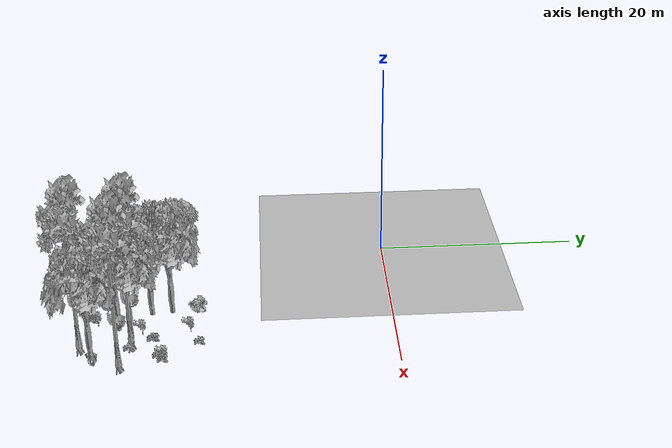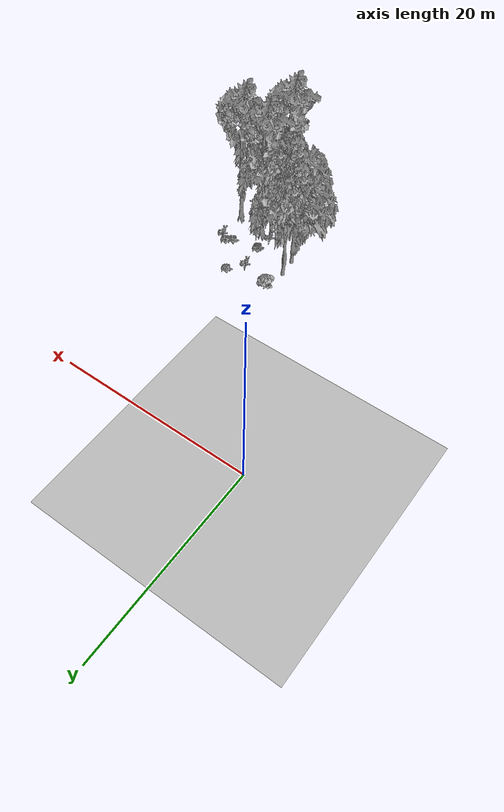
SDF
<sdf version="1.7">
 <world name="default">
  <model name="ground_plane">
   <static>1</static>
   <link name="link">
    <collision name="collision">
     <pose>-50 0 0 0 -0 0</pose>
     <geometry><plane><normal>0 0 1</normal><size>80 80</size></plane></geometry>
     <surface><contact><ode><min_depth>0.01</min_depth><max_vel>0</max_vel></ode></contact></surface>
    </collision>
    <visual name="grass">
     <cast_shadows>0</cast_shadows>
     <geometry>
      <mesh>
       <scale>0.46714285714285714 0.46714285714285714 0.1</scale>
       <uri>file://grass_plane/meshes/grass_plane.dae</uri>
      </mesh>
     </geometry>
    </visual>
   </link>
  </model>
  <model name="Tree 85">
   <static>1</static>
   <pose>14.500510352362717 -24.679226710467805 0 1.57079 -0 0</pose>
   <link name="link">
    <collision name="collision">
     <geometry><mesh><scale>3.5 5 3.5</scale><uri>model://tree_2/meshes/tree_2.obj</uri></mesh></geometry>
    </collision>
    <visual name="visual">
     <geometry><mesh><scale>3.5 5 3.5</scale><uri>model://tree_2/meshes/tree_2.obj</uri></mesh></geometry>
    </visual>
   </link>
  </model>
  <model name="Tree 201">
   <static>1</static>
   <pose>15.6485068210511 -24.58018564617256 0 1.57079 -0 0</pose>
   <link name="link">
    <collision name="collision">
     <geometry><mesh><scale>3.5 5 3.5</scale><uri>model://tree_9/meshes/tree_9.obj</uri></mesh></geometry>
    </collision>
    <visual name="visual">
     <geometry><mesh><scale>3.5 5 3.5</scale><uri>model://tree_9/meshes/tree_9.obj</uri></mesh></geometry>
    </visual>
   </link>
  </model>
  <model name="Tree 353">
   <static>1</static>
   <pose>17.406036648293146 -28.088140136848754 0 1.57079 -0 0</pose>
   <link name="link">
    <collision name="collision">
     <geometry><mesh><scale>3.5 5 3.5</scale><uri>model://tree_2/meshes/tree_2.obj</uri></mesh></geometry>
    </collision>
    <visual name="visual">
     <geometry><mesh><scale>3.5 5 3.5</scale><uri>model://tree_2/meshes/tree_2.obj</uri></mesh></geometry>
    </visual>
   </link>
  </model>
  <model name="Tree 354">
   <static>1</static>
   <pose>10.471961368132376 -21.089634048627843 0 1.57079 -0 0</pose>
   <link name="link">
    <collision name="collision">
     <geometry><mesh><scale>3.5 5 3.5</scale><uri>model://tree_2/meshes/tree_2.obj</uri></mesh></geometry>
    </collision>
    <visual name="visual">
     <geometry><mesh><scale>3.5 5 3.5</scale><uri>model://tree_2/meshes/tree_2.obj</uri></mesh></geometry>
    </visual>
   </link>
  </model>
  <model name="Tree 393">
   <static>1</static>
   <pose>13.143917719322623 -25.939606236745423 0 1.57079 -0 0</pose>
   <link name="link">
    <collision name="collision">
     <geometry><mesh><scale>3.5 5 3.5</scale><uri>model://tree_2/meshes/tree_2.obj</uri></mesh></geometry>
    </collision>
    <visual name="visual">
     <geometry><mesh><scale>3.5 5 3.5</scale><uri>model://tree_2/meshes/tree_2.obj</uri></mesh></geometry>
    </visual>
   </link>
  </model>
  <model name="Tree 433">
   <static>1</static>
   <pose>15.844850873928287 -29.30698377522848 0 1.57079 -0 0</pose>
   <link name="link">
    <collision name="collision">
     <geometry><mesh><scale>3.5 5 3.5</scale><uri>model://tree_9/meshes/tree_9.obj</uri></mesh></geometry>
    </collision>
    <visual name="visual">
     <geometry><mesh><scale>3.5 5 3.5</scale><uri>model://tree_9/meshes/tree_9.obj</uri></mesh></geometry>
    </visual>
   </link>
  </model>
  <model name="Tree 434">
   <static>1</static>
   <pose>10.701705384701484 -23.004031213164406 0 1.57079 -0 0</pose>
   <link name="link">
    <collision name="collision">
     <geometry><mesh><scale>3.5 5 3.5</scale><uri>model://tree_2/meshes/tree_2.obj</uri></mesh></geometry>
    </collision>
    <visual name="visual">
     <geometry><mesh><scale>3.5 5 3.5</scale><uri>model://tree_2/meshes/tree_2.obj</uri></mesh></geometry>
    </visual>
   </link>
  </model>
  <model name="Tree 559">
   <static>1</static>
   <pose>18.967226536288912 -25.44165670173431 0 1.57079 -0 0</pose>
   <link name="link">
    <collision name="collision">
     <geometry><mesh><scale>3.5 5 3.5</scale><uri>model://tree_9/meshes/tree_9.obj</uri></mesh></geometry>
    </collision>
    <visual name="visual">
     <geometry><mesh><scale>3.5 5 3.5</scale><uri>model://tree_9/meshes/tree_9.obj</uri></mesh></geometry>
    </visual>
   </link>
  </model>
  <model name="Bush 29">
   <static>1</static>
   <pose>13.99531569165243 -19.189531527407084 0 1.57079 -0 0</pose>
   <link name="link">
    <collision name="collision">
     <geometry><mesh><scale>2 2 2</scale><uri>model://bush_5/meshes/bush_5.obj</uri></mesh></geometry>
     <surface><contact><collide_without_contact>false</collide_without_contact></contact></surface>
    </collision>
    <visual name="visual">
     <geometry><mesh><scale>2 2 2</scale><uri>model://bush_5/meshes/bush_5.obj</uri></mesh></geometry>
    </visual>
   </link>
  </model>
  <model name="Bush 47">
   <static>1</static>
   <pose>14.786373801034493 -22.751242320974498 0 1.57079 -0 0</pose>
   <link name="link">
    <collision name="collision">
     <geometry><mesh><scale>2 2 2</scale><uri>model://bush_2/meshes/bush_2.obj</uri></mesh></geometry>
     <surface><contact><collide_without_contact>false</collide_without_contact></contact></surface>
    </collision>
    <visual name="visual">
     <geometry><mesh><scale>2 2 2</scale><uri>model://bush_2/meshes/bush_2.obj</uri></mesh></geometry>
    </visual>
   </link>
  </model>
  <model name="Bush 67">
   <static>1</static>
   <pose>11.334104718595945 -28.682232145448232 0 1.57079 -0 0</pose>
   <link name="link">
    <collision name="collision">
     <geometry><mesh><scale>2 2 2</scale><uri>model://bush_2/meshes/bush_2.obj</uri></mesh></geometry>
     <surface><contact><collide_without_contact>false</collide_without_contact></contact></surface>
    </collision>
    <visual name="visual">
     <geometry><mesh><scale>2 2 2</scale><uri>model://bush_2/meshes/bush_2.obj</uri></mesh></geometry>
    </visual>
   </link>
  </model>
  <model name="Bush 282">
   <static>1</static>
   <pose>17.524847680835563 -22.0752658509111 0 1.57079 -0 0</pose>
   <link name="link">
    <collision name="collision">
     <geometry><mesh><scale>2 2 2</scale><uri>model://bush_2/meshes/bush_2.obj</uri></mesh></geometry>
     <surface><contact><collide_without_contact>false</collide_without_contact></contact></surface>
    </collision>
    <visual name="visual">
     <geometry><mesh><scale>2 2 2</scale><uri>model://bush_2/meshes/bush_2.obj</uri></mesh></geometry>
    </visual>
   </link>
  </model>
  <model name="Bush 292">
   <static>1</static>
   <pose>18.481319889072154 -21.398530556119752 0 1.57079 -0 0</pose>
   <link name="link">
    <collision name="collision">
     <geometry><mesh><scale>2 2 2</scale><uri>model://bush_5/meshes/bush_5.obj</uri></mesh></geometry>
     <surface><contact><collide_without_contact>false</collide_without_contact></contact></surface>
    </collision>
    <visual name="visual">
     <geometry><mesh><scale>2 2 2</scale><uri>model://bush_5/meshes/bush_5.obj</uri></mesh></geometry>
    </visual>
   </link>
  </model>
  <model name="Bush 397">
   <static>1</static>
   <pose>16.232791092512358 -24.80346667804115 0 1.57079 -0 0</pose>
   <link name="link">
    <collision name="collision">
     <geometry><mesh><scale>2 2 2</scale><uri>model://bush_2/meshes/bush_2.obj</uri></mesh></geometry>
     <surface><contact><collide_without_contact>false</collide_without_contact></contact></surface>
    </collision>
    <visual name="visual">
     <geometry><mesh><scale>2 2 2</scale><uri>model://bush_2/meshes/bush_2.obj</uri></mesh></geometry>
    </visual>
   </link>
  </model>
  <model name="Bush 410">
   <static>1</static>
   <pose>15.604717257151258 -18.36979954907104 0 1.57079 -0 0</pose>
   <link name="link">
    <collision name="collision">
     <geometry><mesh><scale>2 2 2</scale><uri>model://bush_2/meshes/bush_2.obj</uri></mesh></geometry>
     <surface><contact><collide_without_contact>false</collide_without_contact></contact></surface>
    </collision>
    <visual name="visual">
     <geometry><mesh><scale>2 2 2</scale><uri>model://bush_2/meshes/bush_2.obj</uri></mesh></geometry>
    </visual>
   </link>
  </model>
  <model name="Bush 415">
   <static>1</static>
   <pose>18.627591620202914 -27.88231999450611 0 1.57079 -0 0</pose>
   <link name="link">
    <collision name="collision">
     <geometry><mesh><scale>2 2 2</scale><uri>model://bush_4/meshes/bush_4.obj</uri></mesh></geometry>
     <surface><contact><collide_without_contact>false</collide_without_contact></contact></surface>
    </collision>
    <visual name="visual">
     <geometry><mesh><scale>2 2 2</scale><uri>model://bush_4/meshes/bush_4.obj</uri></mesh></geometry>
    </visual>
   </link>
  </model>
  <model name="Bush 458">
   <static>1</static>
   <pose>14.759714256640038 -22.584710621147845 0 1.57079 -0 0</pose>
   <link name="link">
    <collision name="collision">
     <geometry><mesh><scale>2 2 2</scale><uri>model://bush_2/meshes/bush_2.obj</uri></mesh></geometry>
     <surface><contact><collide_without_contact>false</collide_without_contact></contact></surface>
    </collision>
    <visual name="visual">
     <geometry><mesh><scale>2 2 2</scale><uri>model://bush_2/meshes/bush_2.obj</uri></mesh></geometry>
    </visual>
   </link>
  </model>
  <model name="Bush 484">
   <static>1</static>
   <pose>12.497637149304616 -27.903896218735955 0 1.57079 -0 0</pose>
   <link name="link">
    <collision name="collision">
     <geometry><mesh><scale>2 2 2</scale><uri>model://bush_5/meshes/bush_5.obj</uri></mesh></geometry>
     <surface><contact><collide_without_contact>false</collide_without_contact></contact></surface>
    </collision>
    <visual name="visual">
     <geometry><mesh><scale>2 2 2</scale><uri>model://bush_5/meshes/bush_5.obj</uri></mesh></geometry>
    </visual>
   </link>
  </model>
  <model name="Bush 560">
   <static>1</static>
   <pose>14.149890891183972 -23.646553416176026 0 1.57079 -0 0</pose>
   <link name="link">
    <collision name="collision">
     <geometry><mesh><scale>2 2 2</scale><uri>model://bush_5/meshes/bush_5.obj</uri></mesh></geometry>
     <surface><contact><collide_without_contact>false</collide_without_contact></contact></surface>
    </collision>
    <visual name="visual">
     <geometry><mesh><scale>2 2 2</scale><uri>model://bush_5/meshes/bush_5.obj</uri></mesh></geometry>
    </visual>
   </link>
  </model>
  <model name="Bush 590">
   <static>1</static>
   <pose>11.150679063268079 -29.28516063859967 0 1.57079 -0 0</pose>
   <link name="link">
    <collision name="collision">
     <geometry><mesh><scale>2 2 2</scale><uri>model://bush_1/meshes/bush_1.obj</uri></mesh></geometry>
     <surface><contact><collide_without_contact>false</collide_without_contact></contact></surface>
    </collision>
    <visual name="visual">
     <geometry><mesh><scale>2 2 2</scale><uri>model://bush_1/meshes/bush_1.obj</uri></mesh></geometry>
    </visual>
   </link>
  </model>
  <model name="Bush 593">
   <static>1</static>
   <pose>18.156110474324805 -21.622798517304112 0 1.57079 -0 0</pose>
   <link name="link">
    <collision name="collision">
     <geometry><mesh><scale>2 2 2</scale><uri>model://bush_2/meshes/bush_2.obj</uri></mesh></geometry>
     <surface><contact><collide_without_contact>false</collide_without_contact></contact></surface>
    </collision>
    <visual name="visual">
     <geometry><mesh><scale>2 2 2</scale><uri>model://bush_2/meshes/bush_2.obj</uri></mesh></geometry>
    </visual>
   </link>
  </model>
  <model name="Bush 597">
   <static>1</static>
   <pose>10.899142893808317 -18.67566951299664 0 1.57079 -0 0</pose>
   <link name="link">
    <collision name="collision">
     <geometry><mesh><scale>2 2 2</scale><uri>model://bush_1/meshes/bush_1.obj</uri></mesh></geometry>
     <surface><contact><collide_without_contact>false</collide_without_contact></contact></surface>
    </collision>
    <visual name="visual">
     <geometry><mesh><scale>2 2 2</scale><uri>model://bush_1/meshes/bush_1.obj</uri></mesh></geometry>
    </visual>
   </link>
  </model>
 </world>
</sdf>
